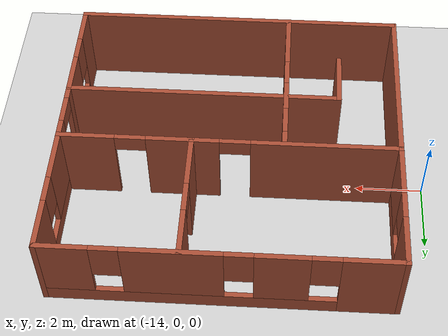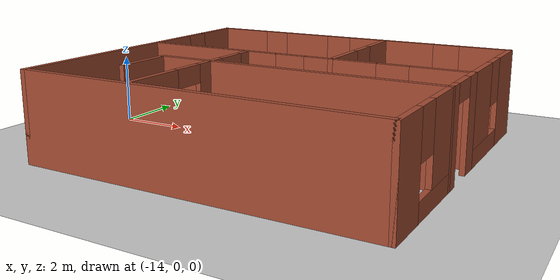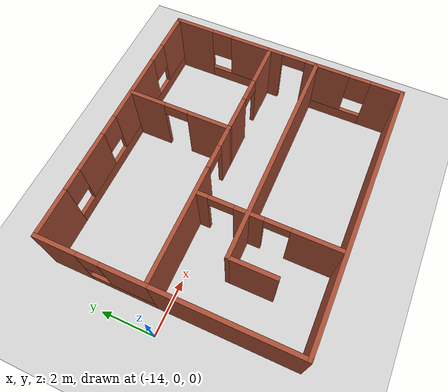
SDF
<sdf version="1.7">
 <world name="default">
  <model name="ground_plane">
   <static>1</static>
   <link name="link">
    <collision name="collision">
     <geometry><plane><normal>0 0 1</normal><size>100 100</size></plane></geometry>
     <surface><friction><ode><mu>100</mu><mu2>50</mu2></ode></friction></surface>
    </collision>
    <visual name="visual">
     <cast_shadows>0</cast_shadows>
     <geometry><plane><normal>0 0 1</normal><size>100 100</size></plane></geometry>
     <material>
      <script><uri>file://media/materials/scripts/gazebo.material</uri><name>Gazebo/Grey</name></script>
     </material>
    </visual>
   </link>
  </model>
  <model name="Brick_house3">
   <pose>-3.01773 -0.204708 0 0 -0 0</pose>
   <link name="Wall_11">
    <pose>-10.0574 2.55 0 0 -0 -1.5708</pose>
    <visual name="Wall_11_Visual_0">
     <pose>-1.22598 0 1.25 0 -0 0</pose>
     <geometry><box><size>1.54805 0.15 2.5</size></box></geometry>
     <material>
      <script><uri>file://media/materials/scripts/gazebo.material</uri><name>Gazebo/Bricks</name></script>
      <ambient>1 1 1 1</ambient>
     </material>
     <meta><layer>0</layer></meta>
    </visual>
    <collision name="Wall_11_Collision_0">
     <geometry><box><size>1.54805 0.15 2.5</size></box></geometry>
     <pose>-1.22598 0 1.25 0 -0 0</pose>
    </collision>
    <visual name="Wall_11_Visual_1">
     <pose>0.774024 0 0.25 0 -0 0</pose>
     <geometry><box><size>2.45195 0.15 0.5</size></box></geometry>
     <material>
      <script><uri>file://media/materials/scripts/gazebo.material</uri><name>Gazebo/Bricks</name></script>
      <ambient>1 1 1 1</ambient>
     </material>
     <meta><layer>0</layer></meta>
    </visual>
    <collision name="Wall_11_Collision_1">
     <geometry><box><size>2.45195 0.15 0.5</size></box></geometry>
     <pose>0.774024 0 0.25 0 -0 0</pose>
    </collision>
    <visual name="Wall_11_Visual_2">
     <pose>1.17402 0 1.5 0 -0 0</pose>
     <geometry><box><size>1.65195 0.15 2</size></box></geometry>
     <material>
      <script><uri>file://media/materials/scripts/gazebo.material</uri><name>Gazebo/Bricks</name></script>
      <ambient>1 1 1 1</ambient>
     </material>
     <meta><layer>0</layer></meta>
    </visual>
    <collision name="Wall_11_Collision_2">
     <geometry><box><size>1.65195 0.15 2</size></box></geometry>
     <pose>1.17402 0 1.5 0 -0 0</pose>
    </collision>
    <visual name="Wall_11_Visual_3">
     <pose>-0.051953 0 1.9 0 -0 0</pose>
     <geometry><box><size>0.8 0.15 1.2</size></box></geometry>
     <material>
      <script><uri>file://media/materials/scripts/gazebo.material</uri><name>Gazebo/Bricks</name></script>
      <ambient>1 1 1 1</ambient>
     </material>
     <meta><layer>0</layer></meta>
    </visual>
    <collision name="Wall_11_Collision_3">
     <geometry><box><size>0.8 0.15 1.2</size></box></geometry>
     <pose>-0.051953 0 1.9 0 -0 0</pose>
    </collision>
   </link>
   <link name="Wall_12">
    <pose>-7.05736 0.625 0 0 -0 0</pose>
    <visual name="Wall_12_Visual_0">
     <pose>-0.888053 0 1.25 0 -0 0</pose>
     <geometry><box><size>4.3739 0.15 2.5</size></box></geometry>
     <material>
      <script><uri>file://media/materials/scripts/gazebo.material</uri><name>Gazebo/Bricks</name></script>
      <ambient>1 1 1 1</ambient>
     </material>
     <meta><layer>0</layer></meta>
    </visual>
    <collision name="Wall_12_Collision_0">
     <geometry><box><size>4.3739 0.15 2.5</size></box></geometry>
     <pose>-0.888053 0 1.25 0 -0 0</pose>
    </collision>
    <visual name="Wall_12_Visual_1">
     <pose>2.63695 0 1.25 0 -0 0</pose>
     <geometry><box><size>0.876105 0.15 2.5</size></box></geometry>
     <material>
      <script><uri>file://media/materials/scripts/gazebo.material</uri><name>Gazebo/Bricks</name></script>
      <ambient>1 1 1 1</ambient>
     </material>
     <meta><layer>0</layer></meta>
    </visual>
    <collision name="Wall_12_Collision_1">
     <geometry><box><size>0.876105 0.15 2.5</size></box></geometry>
     <pose>2.63695 0 1.25 0 -0 0</pose>
    </collision>
    <visual name="Wall_12_Visual_2">
     <pose>1.7489 0 2.25 0 -0 0</pose>
     <geometry><box><size>0.9 0.15 0.5</size></box></geometry>
     <material>
      <script><uri>file://media/materials/scripts/gazebo.material</uri><name>Gazebo/Bricks</name></script>
      <ambient>1 1 1 1</ambient>
     </material>
     <meta><layer>0</layer></meta>
    </visual>
    <collision name="Wall_12_Collision_2">
     <geometry><box><size>0.9 0.15 0.5</size></box></geometry>
     <pose>1.7489 0 2.25 0 -0 0</pose>
    </collision>
   </link>
   <link name="Wall_14">
    <pose>-0.207361 -0.3 0 0 -0 -1.5708</pose>
    <visual name="Wall_14_Visual_0">
     <pose>-0.702988 0 1.25 0 -0 0</pose>
     <geometry><box><size>0.594024 0.15 2.5</size></box></geometry>
     <material>
      <script><uri>file://media/materials/scripts/gazebo.material</uri><name>Gazebo/Bricks</name></script>
      <ambient>1 1 1 1</ambient>
     </material>
     <meta><layer>0</layer></meta>
    </visual>
    <collision name="Wall_14_Collision_0">
     <geometry><box><size>0.594024 0.15 2.5</size></box></geometry>
     <pose>-0.702988 0 1.25 0 -0 0</pose>
    </collision>
    <visual name="Wall_14_Visual_1">
     <pose>0.747012 0 1.25 0 -0 0</pose>
     <geometry><box><size>0.505976 0.15 2.5</size></box></geometry>
     <material>
      <script><uri>file://media/materials/scripts/gazebo.material</uri><name>Gazebo/Bricks</name></script>
      <ambient>1 1 1 1</ambient>
     </material>
     <meta><layer>0</layer></meta>
    </visual>
    <collision name="Wall_14_Collision_1">
     <geometry><box><size>0.505976 0.15 2.5</size></box></geometry>
     <pose>0.747012 0 1.25 0 -0 0</pose>
    </collision>
    <visual name="Wall_14_Visual_2">
     <pose>0.044024 0 2.25 0 -0 0</pose>
     <geometry><box><size>0.9 0.15 0.5</size></box></geometry>
     <material>
      <script><uri>file://media/materials/scripts/gazebo.material</uri><name>Gazebo/Bricks</name></script>
      <ambient>1 1 1 1</ambient>
     </material>
     <meta><layer>0</layer></meta>
    </visual>
    <collision name="Wall_14_Collision_2">
     <geometry><box><size>0.9 0.15 0.5</size></box></geometry>
     <pose>0.044024 0 2.25 0 -0 0</pose>
    </collision>
   </link>
   <link name="Wall_15">
    <collision name="Wall_15_Collision">
     <geometry><box><size>8.25 0.15 2.5</size></box></geometry>
     <pose>0 0 1.25 0 -0 0</pose>
    </collision>
    <visual name="Wall_15_Visual">
     <pose>0 0 1.25 0 -0 0</pose>
     <geometry><box><size>8.25 0.15 2.5</size></box></geometry>
     <material>
      <script><uri>file://media/materials/scripts/gazebo.material</uri><name>Gazebo/Bricks</name></script>
      <ambient>1 1 1 1</ambient>
     </material>
     <meta><layer>0</layer></meta>
    </visual>
    <pose>-4.25736 -1.225 0 0 -0 3.14159</pose>
   </link>
   <link name="Wall_16">
    <collision name="Wall_16_Collision">
     <geometry><box><size>1.75 0.15 2.5</size></box></geometry>
     <pose>0 0 1.25 0 -0 0</pose>
    </collision>
    <visual name="Wall_16_Visual">
     <pose>0 0 1.25 0 -0 0</pose>
     <geometry><box><size>1.75 0.15 2.5</size></box></geometry>
     <material>
      <script><uri>file://media/materials/scripts/gazebo.material</uri><name>Gazebo/Bricks</name></script>
      <ambient>1 1 1 1</ambient>
     </material>
     <meta><layer>0</layer></meta>
    </visual>
    <pose>-8.30736 -2.025 0 0 -0 -1.5708</pose>
   </link>
   <link name="Wall_18">
    <collision name="Wall_18_Collision">
     <geometry><box><size>5.25 0.15 2.5</size></box></geometry>
     <pose>0 0 1.25 0 -0 0</pose>
    </collision>
    <visual name="Wall_18_Visual">
     <pose>0 0 1.25 0 -0 0</pose>
     <geometry><box><size>5.25 0.15 2.5</size></box></geometry>
     <material>
      <script><uri>file://media/materials/scripts/gazebo.material</uri><name>Gazebo/Bricks</name></script>
      <ambient>1 1 1 1</ambient>
     </material>
     <meta><layer>0</layer></meta>
    </visual>
    <pose>-10.0574 -1.925 0 0 -0 -1.5708</pose>
   </link>
   <link name="Wall_19">
    <collision name="Wall_19_Collision">
     <geometry><box><size>10 0.15 2.5</size></box></geometry>
     <pose>0 0 1.25 0 -0 0</pose>
    </collision>
    <visual name="Wall_19_Visual">
     <pose>0 0 1.25 0 -0 0</pose>
     <geometry><box><size>10 0.15 2.5</size></box></geometry>
     <material>
      <script><uri>file://media/materials/scripts/gazebo.material</uri><name>Gazebo/Bricks</name></script>
      <ambient>1 1 1 1</ambient>
     </material>
     <meta><layer>0</layer></meta>
    </visual>
    <pose>-5.13236 -4.475 0 0 -0 0</pose>
   </link>
   <link name="Wall_20">
    <pose>-0.207361 -2.85 0 0 -0 1.5708</pose>
    <visual name="Wall_20_Visual_0">
     <pose>-1.07906 0 1.25 0 -0 0</pose>
     <geometry><box><size>1.24188 0.15 2.5</size></box></geometry>
     <material>
      <script><uri>file://media/materials/scripts/gazebo.material</uri><name>Gazebo/Bricks</name></script>
      <ambient>1 1 1 1</ambient>
     </material>
     <meta><layer>0</layer></meta>
    </visual>
    <collision name="Wall_20_Collision_0">
     <geometry><box><size>1.24188 0.15 2.5</size></box></geometry>
     <pose>-1.07906 0 1.25 0 -0 0</pose>
    </collision>
    <visual name="Wall_20_Visual_1">
     <pose>0.620943 0 0.25 0 -0 0</pose>
     <geometry><box><size>2.15812 0.15 0.5</size></box></geometry>
     <material>
      <script><uri>file://media/materials/scripts/gazebo.material</uri><name>Gazebo/Bricks</name></script>
      <ambient>1 1 1 1</ambient>
     </material>
     <meta><layer>0</layer></meta>
    </visual>
    <collision name="Wall_20_Collision_1">
     <geometry><box><size>2.15812 0.15 0.5</size></box></geometry>
     <pose>0.620943 0 0.25 0 -0 0</pose>
    </collision>
    <visual name="Wall_20_Visual_2">
     <pose>1.02094 0 1.5 0 -0 0</pose>
     <geometry><box><size>1.35811 0.15 2</size></box></geometry>
     <material>
      <script><uri>file://media/materials/scripts/gazebo.material</uri><name>Gazebo/Bricks</name></script>
      <ambient>1 1 1 1</ambient>
     </material>
     <meta><layer>0</layer></meta>
    </visual>
    <collision name="Wall_20_Collision_2">
     <geometry><box><size>1.35811 0.15 2</size></box></geometry>
     <pose>1.02094 0 1.5 0 -0 0</pose>
    </collision>
    <visual name="Wall_20_Visual_3">
     <pose>-0.058115 0 1.9 0 -0 0</pose>
     <geometry><box><size>0.8 0.15 1.2</size></box></geometry>
     <material>
      <script><uri>file://media/materials/scripts/gazebo.material</uri><name>Gazebo/Bricks</name></script>
      <ambient>1 1 1 1</ambient>
     </material>
     <meta><layer>0</layer></meta>
    </visual>
    <collision name="Wall_20_Collision_3">
     <geometry><box><size>0.8 0.15 1.2</size></box></geometry>
     <pose>-0.058115 0 1.9 0 -0 0</pose>
    </collision>
   </link>
   <link name="Wall_22">
    <pose>-6.73111 -1.94178 0 0 -0 1.5708</pose>
    <visual name="Wall_22_Visual_0">
     <pose>-1.61465 0 1.25 0 -0 0</pose>
     <geometry><box><size>1.7707 0.15 2.5</size></box></geometry>
     <material>
      <script><uri>file://media/materials/scripts/gazebo.material</uri><name>Gazebo/Bricks</name></script>
      <ambient>1 1 1 1</ambient>
     </material>
     <meta><layer>0</layer></meta>
    </visual>
    <collision name="Wall_22_Collision_0">
     <geometry><box><size>1.7707 0.15 2.5</size></box></geometry>
     <pose>-1.61465 0 1.25 0 -0 0</pose>
    </collision>
    <visual name="Wall_22_Visual_1">
     <pose>0.686508 0 1.25 0 -0 0</pose>
     <geometry><box><size>1.03161 0.15 2.5</size></box></geometry>
     <material>
      <script><uri>file://media/materials/scripts/gazebo.material</uri><name>Gazebo/Bricks</name></script>
      <ambient>1 1 1 1</ambient>
     </material>
     <meta><layer>0</layer></meta>
    </visual>
    <collision name="Wall_22_Collision_1">
     <geometry><box><size>1.03161 0.15 2.5</size></box></geometry>
     <pose>0.686508 0 1.25 0 -0 0</pose>
    </collision>
    <visual name="Wall_22_Visual_2">
     <pose>2.30116 0 1.25 0 -0 0</pose>
     <geometry><box><size>0.397688 0.15 2.5</size></box></geometry>
     <material>
      <script><uri>file://media/materials/scripts/gazebo.material</uri><name>Gazebo/Bricks</name></script>
      <ambient>1 1 1 1</ambient>
     </material>
     <meta><layer>0</layer></meta>
    </visual>
    <collision name="Wall_22_Collision_2">
     <geometry><box><size>0.397688 0.15 2.5</size></box></geometry>
     <pose>2.30116 0 1.25 0 -0 0</pose>
    </collision>
    <visual name="Wall_22_Visual_3">
     <pose>-0.279296 0 2.25 0 -0 0</pose>
     <geometry><box><size>0.9 0.15 0.5</size></box></geometry>
     <material>
      <script><uri>file://media/materials/scripts/gazebo.material</uri><name>Gazebo/Bricks</name></script>
      <ambient>1 1 1 1</ambient>
     </material>
     <meta><layer>0</layer></meta>
    </visual>
    <collision name="Wall_22_Collision_3">
     <geometry><box><size>0.9 0.15 0.5</size></box></geometry>
     <pose>-0.279296 0 2.25 0 -0 0</pose>
    </collision>
    <visual name="Wall_22_Visual_4">
     <pose>1.65231 0 2.25 0 -0 0</pose>
     <geometry><box><size>0.9 0.15 0.5</size></box></geometry>
     <material>
      <script><uri>file://media/materials/scripts/gazebo.material</uri><name>Gazebo/Bricks</name></script>
      <ambient>1 1 1 1</ambient>
     </material>
     <meta><layer>0</layer></meta>
    </visual>
    <collision name="Wall_22_Collision_4">
     <geometry><box><size>0.9 0.15 0.5</size></box></geometry>
     <pose>1.65231 0 2.25 0 -0 0</pose>
    </collision>
   </link>
   <link name="Wall_6">
    <pose>-5.13236 4.475 0 0 -0 0</pose>
    <visual name="Wall_6_Visual_0">
     <pose>-4.11101 0 1.25 0 -0 0</pose>
     <geometry><box><size>1.77797 0.15 2.5</size></box></geometry>
     <material>
      <script><uri>file://media/materials/scripts/gazebo.material</uri><name>Gazebo/Bricks</name></script>
      <ambient>1 1 1 1</ambient>
     </material>
     <meta><layer>0</layer></meta>
    </visual>
    <collision name="Wall_6_Collision_0">
     <geometry><box><size>1.77797 0.15 2.5</size></box></geometry>
     <pose>-4.11101 0 1.25 0 -0 0</pose>
    </collision>
    <visual name="Wall_6_Visual_1">
     <pose>0.888986 0 0.25 0 -0 0</pose>
     <geometry><box><size>8.22203 0.15 0.5</size></box></geometry>
     <material>
      <script><uri>file://media/materials/scripts/gazebo.material</uri><name>Gazebo/Bricks</name></script>
      <ambient>1 1 1 1</ambient>
     </material>
     <meta><layer>0</layer></meta>
    </visual>
    <collision name="Wall_6_Collision_1">
     <geometry><box><size>8.22203 0.15 0.5</size></box></geometry>
     <pose>0.888986 0 0.25 0 -0 0</pose>
    </collision>
    <visual name="Wall_6_Visual_2">
     <pose>-1.66273 0 1.5 0 -0 0</pose>
     <geometry><box><size>1.51859 0.15 2</size></box></geometry>
     <material>
      <script><uri>file://media/materials/scripts/gazebo.material</uri><name>Gazebo/Bricks</name></script>
      <ambient>1 1 1 1</ambient>
     </material>
     <meta><layer>0</layer></meta>
    </visual>
    <collision name="Wall_6_Collision_2">
     <geometry><box><size>1.51859 0.15 2</size></box></geometry>
     <pose>-1.66273 0 1.5 0 -0 0</pose>
    </collision>
    <visual name="Wall_6_Visual_3">
     <pose>1.28324 0 1.5 0 -0 0</pose>
     <geometry><box><size>2.77336 0.15 2</size></box></geometry>
     <material>
      <script><uri>file://media/materials/scripts/gazebo.material</uri><name>Gazebo/Bricks</name></script>
      <ambient>1 1 1 1</ambient>
     </material>
     <meta><layer>0</layer></meta>
    </visual>
    <collision name="Wall_6_Collision_3">
     <geometry><box><size>2.77336 0.15 2</size></box></geometry>
     <pose>1.28324 0 1.5 0 -0 0</pose>
    </collision>
    <visual name="Wall_6_Visual_4">
     <pose>4.23496 0 1.5 0 -0 0</pose>
     <geometry><box><size>1.53008 0.15 2</size></box></geometry>
     <material>
      <script><uri>file://media/materials/scripts/gazebo.material</uri><name>Gazebo/Bricks</name></script>
      <ambient>1 1 1 1</ambient>
     </material>
     <meta><layer>0</layer></meta>
    </visual>
    <collision name="Wall_6_Collision_4">
     <geometry><box><size>1.53008 0.15 2</size></box></geometry>
     <pose>4.23496 0 1.5 0 -0 0</pose>
    </collision>
    <visual name="Wall_6_Visual_5">
     <pose>-2.82203 0 1.9 0 -0 0</pose>
     <geometry><box><size>0.8 0.15 1.2</size></box></geometry>
     <material>
      <script><uri>file://media/materials/scripts/gazebo.material</uri><name>Gazebo/Bricks</name></script>
      <ambient>1 1 1 1</ambient>
     </material>
     <meta><layer>0</layer></meta>
    </visual>
    <collision name="Wall_6_Collision_5">
     <geometry><box><size>0.8 0.15 1.2</size></box></geometry>
     <pose>-2.82203 0 1.9 0 -0 0</pose>
    </collision>
    <visual name="Wall_6_Visual_6">
     <pose>-0.503436 0 1.9 0 -0 0</pose>
     <geometry><box><size>0.8 0.15 1.2</size></box></geometry>
     <material>
      <script><uri>file://media/materials/scripts/gazebo.material</uri><name>Gazebo/Bricks</name></script>
      <ambient>1 1 1 1</ambient>
     </material>
     <meta><layer>0</layer></meta>
    </visual>
    <collision name="Wall_6_Collision_6">
     <geometry><box><size>0.8 0.15 1.2</size></box></geometry>
     <pose>-0.503436 0 1.9 0 -0 0</pose>
    </collision>
    <visual name="Wall_6_Visual_7">
     <pose>3.06992 0 1.9 0 -0 0</pose>
     <geometry><box><size>0.8 0.15 1.2</size></box></geometry>
     <material>
      <script><uri>file://media/materials/scripts/gazebo.material</uri><name>Gazebo/Bricks</name></script>
      <ambient>1 1 1 1</ambient>
     </material>
     <meta><layer>0</layer></meta>
    </visual>
    <collision name="Wall_6_Collision_7">
     <geometry><box><size>0.8 0.15 1.2</size></box></geometry>
     <pose>3.06992 0 1.9 0 -0 0</pose>
    </collision>
   </link>
   <link name="Wall_7">
    <pose>-0.207361 2.55 0 0 -0 -1.5708</pose>
    <visual name="Wall_7_Visual_0">
     <pose>-1.22598 0 1.25 0 -0 0</pose>
     <geometry><box><size>1.54805 0.15 2.5</size></box></geometry>
     <material>
      <script><uri>file://media/materials/scripts/gazebo.material</uri><name>Gazebo/Bricks</name></script>
      <ambient>1 1 1 1</ambient>
     </material>
     <meta><layer>0</layer></meta>
    </visual>
    <collision name="Wall_7_Collision_0">
     <geometry><box><size>1.54805 0.15 2.5</size></box></geometry>
     <pose>-1.22598 0 1.25 0 -0 0</pose>
    </collision>
    <visual name="Wall_7_Visual_1">
     <pose>0.774024 0 0.25 0 -0 0</pose>
     <geometry><box><size>2.45195 0.15 0.5</size></box></geometry>
     <material>
      <script><uri>file://media/materials/scripts/gazebo.material</uri><name>Gazebo/Bricks</name></script>
      <ambient>1 1 1 1</ambient>
     </material>
     <meta><layer>0</layer></meta>
    </visual>
    <collision name="Wall_7_Collision_1">
     <geometry><box><size>2.45195 0.15 0.5</size></box></geometry>
     <pose>0.774024 0 0.25 0 -0 0</pose>
    </collision>
    <visual name="Wall_7_Visual_2">
     <pose>1.17402 0 1.5 0 -0 0</pose>
     <geometry><box><size>1.65195 0.15 2</size></box></geometry>
     <material>
      <script><uri>file://media/materials/scripts/gazebo.material</uri><name>Gazebo/Bricks</name></script>
      <ambient>1 1 1 1</ambient>
     </material>
     <meta><layer>0</layer></meta>
    </visual>
    <collision name="Wall_7_Collision_2">
     <geometry><box><size>1.65195 0.15 2</size></box></geometry>
     <pose>1.17402 0 1.5 0 -0 0</pose>
    </collision>
    <visual name="Wall_7_Visual_3">
     <pose>-0.051953 0 1.9 0 -0 0</pose>
     <geometry><box><size>0.8 0.15 1.2</size></box></geometry>
     <material>
      <script><uri>file://media/materials/scripts/gazebo.material</uri><name>Gazebo/Bricks</name></script>
      <ambient>1 1 1 1</ambient>
     </material>
     <meta><layer>0</layer></meta>
    </visual>
    <collision name="Wall_7_Collision_3">
     <geometry><box><size>0.8 0.15 1.2</size></box></geometry>
     <pose>-0.051953 0 1.9 0 -0 0</pose>
    </collision>
   </link>
   <link name="Wall_8">
    <pose>-2.13236 0.625 0 0 -0 3.14159</pose>
    <visual name="Wall_8_Visual_0">
     <pose>-1.15085 0 1.25 0 -0 0</pose>
     <geometry><box><size>1.6983 0.15 2.5</size></box></geometry>
     <material>
      <script><uri>file://media/materials/scripts/gazebo.material</uri><name>Gazebo/Bricks</name></script>
      <ambient>1 1 1 1</ambient>
     </material>
     <meta><layer>0</layer></meta>
    </visual>
    <collision name="Wall_8_Collision_0">
     <geometry><box><size>1.6983 0.15 2.5</size></box></geometry>
     <pose>-1.15085 0 1.25 0 -0 0</pose>
    </collision>
    <visual name="Wall_8_Visual_1">
     <pose>1.29915 0 1.25 0 -0 0</pose>
     <geometry><box><size>1.4017 0.15 2.5</size></box></geometry>
     <material>
      <script><uri>file://media/materials/scripts/gazebo.material</uri><name>Gazebo/Bricks</name></script>
      <ambient>1 1 1 1</ambient>
     </material>
     <meta><layer>0</layer></meta>
    </visual>
    <collision name="Wall_8_Collision_1">
     <geometry><box><size>1.4017 0.15 2.5</size></box></geometry>
     <pose>1.29915 0 1.25 0 -0 0</pose>
    </collision>
    <visual name="Wall_8_Visual_2">
     <pose>0.148296 0 2.25 0 -0 0</pose>
     <geometry><box><size>0.9 0.15 0.5</size></box></geometry>
     <material>
      <script><uri>file://media/materials/scripts/gazebo.material</uri><name>Gazebo/Bricks</name></script>
      <ambient>1 1 1 1</ambient>
     </material>
     <meta><layer>0</layer></meta>
    </visual>
    <collision name="Wall_8_Collision_2">
     <geometry><box><size>0.9 0.15 0.5</size></box></geometry>
     <pose>0.148296 0 2.25 0 -0 0</pose>
    </collision>
   </link>
   <link name="Wall_9">
    <pose>-4.05736 2.55 0 0 -0 1.5708</pose>
    <visual name="Wall_9_Visual_0">
     <pose>-1.17175 0 1.25 0 -0 0</pose>
     <geometry><box><size>1.65651 0.15 2.5</size></box></geometry>
     <material>
      <script><uri>file://media/materials/scripts/gazebo.material</uri><name>Gazebo/Bricks</name></script>
      <ambient>1 1 1 1</ambient>
     </material>
     <meta><layer>0</layer></meta>
    </visual>
    <collision name="Wall_9_Collision_0">
     <geometry><box><size>1.65651 0.15 2.5</size></box></geometry>
     <pose>-1.17175 0 1.25 0 -0 0</pose>
    </collision>
    <visual name="Wall_9_Visual_1">
     <pose>1.27825 0 1.25 0 -0 0</pose>
     <geometry><box><size>1.44349 0.15 2.5</size></box></geometry>
     <material>
      <script><uri>file://media/materials/scripts/gazebo.material</uri><name>Gazebo/Bricks</name></script>
      <ambient>1 1 1 1</ambient>
     </material>
     <meta><layer>0</layer></meta>
    </visual>
    <collision name="Wall_9_Collision_1">
     <geometry><box><size>1.44349 0.15 2.5</size></box></geometry>
     <pose>1.27825 0 1.25 0 -0 0</pose>
    </collision>
    <visual name="Wall_9_Visual_2">
     <pose>0.106508 0 2.25 0 -0 0</pose>
     <geometry><box><size>0.9 0.15 0.5</size></box></geometry>
     <material>
      <script><uri>file://media/materials/scripts/gazebo.material</uri><name>Gazebo/Bricks</name></script>
      <ambient>1 1 1 1</ambient>
     </material>
     <meta><layer>0</layer></meta>
    </visual>
    <collision name="Wall_9_Collision_2">
     <geometry><box><size>0.9 0.15 0.5</size></box></geometry>
     <pose>0.106508 0 2.25 0 -0 0</pose>
    </collision>
   </link>
   <static>1</static>
  </model>
 </world>
</sdf>
